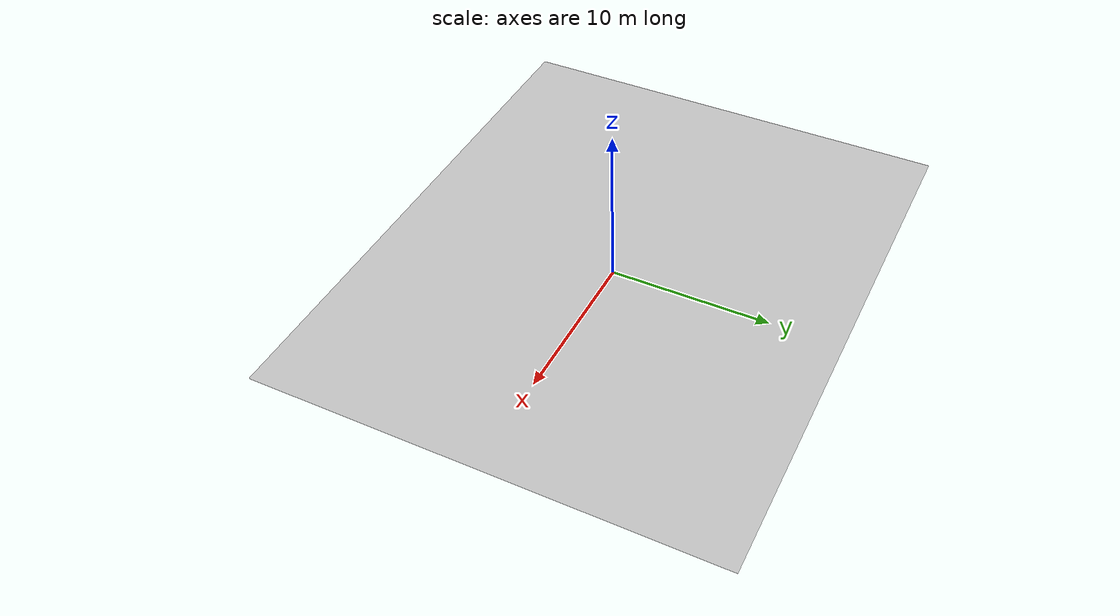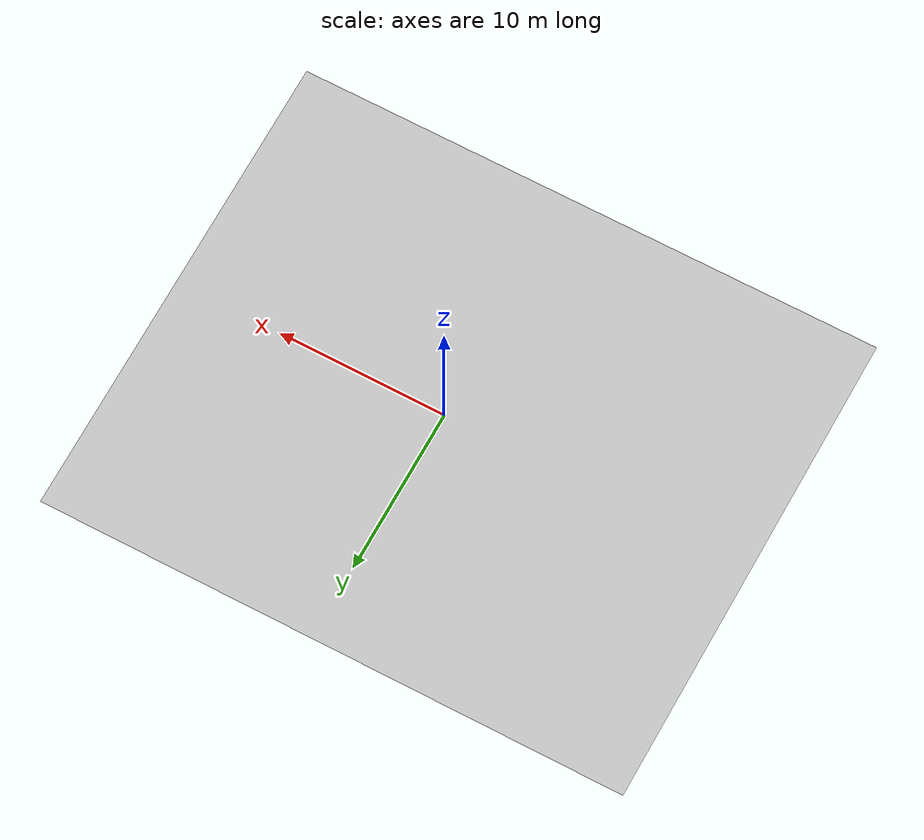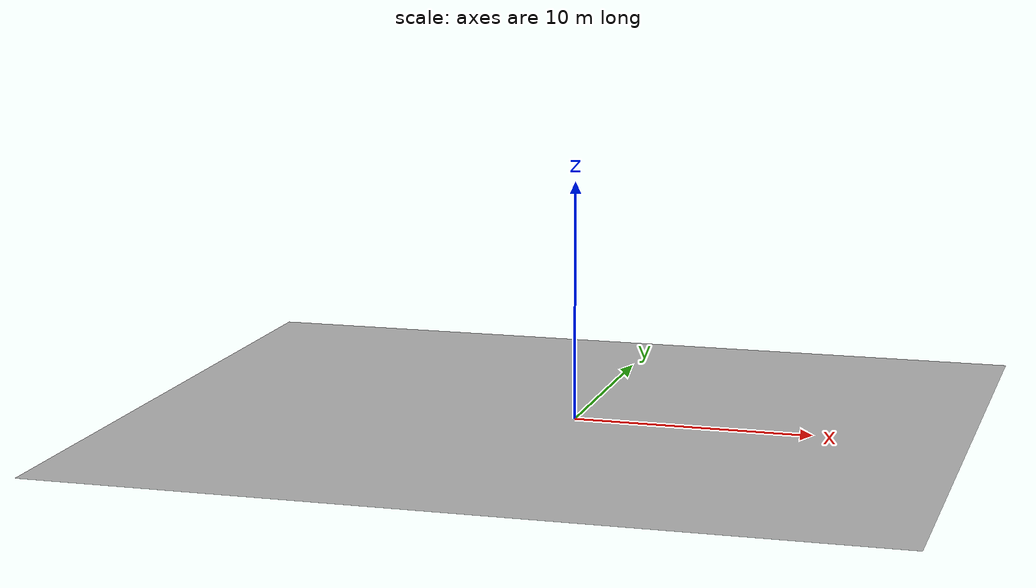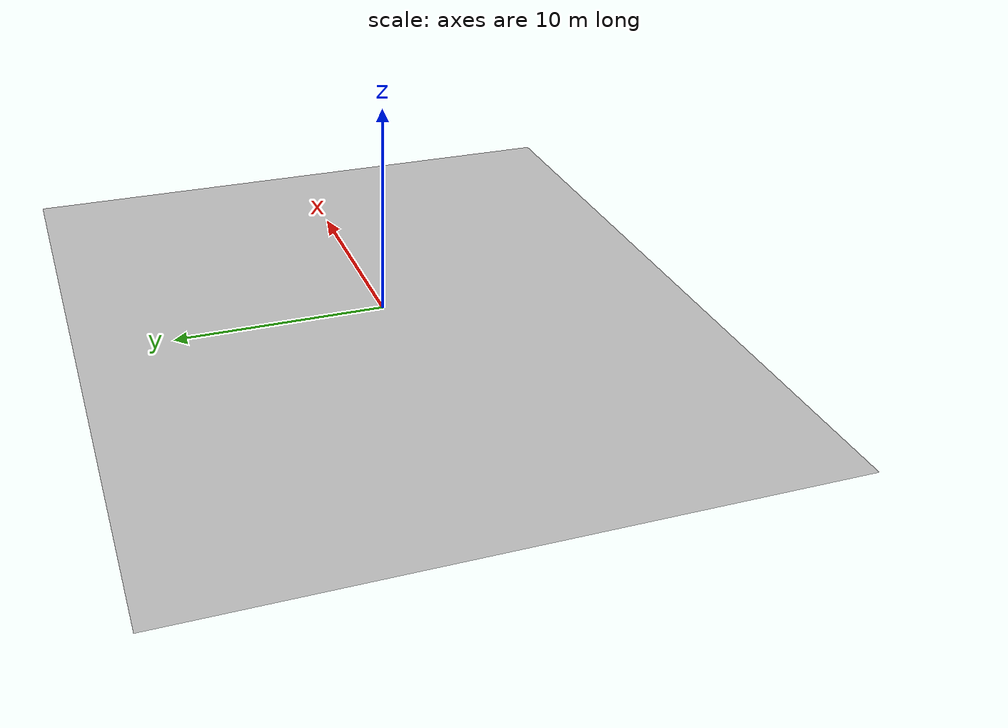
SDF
<?xml version="1.0" ?>
<sdf version="1.7">
  <world name="racing_track">
    <physics name="1ms" type="ignored">
      <max_step_size>0.001</max_step_size>
      <real_time_factor>1.0</real_time_factor>
    </physics>

    <light type="directional" name="sun">
        <cast_shadows>true</cast_shadows>
        <pose>0 0 10 0 0 0</pose>
        <diffuse>0.8 0.8 0.8 1</diffuse>
        <specular>0.2 0.2 0.2 1</specular>
        <attenuation>
            <range>1000</range>
            <constant>0.9</constant>
            <linear>0.01</linear>
            <quadratic>0.001</quadratic>
        </attenuation>
        <direction>-0.5 0.1 -0.9</direction>
    </light>

    <model name="grass_track">
      <pose>0 0 0.001 0 0 0</pose>
      <static>true</static>
      <link name="link">
        <visual name="visual">
          <geometry>
            <mesh>
              <uri>meshes/grass_track.obj</uri>
            </mesh>
          </geometry>
        </visual>

        <collision name="collision">
          <geometry>
            <mesh>
              <uri>meshes/grass_track.obj</uri>
              <scale>1 1 1</scale>
            </mesh>
          </geometry>
        </collision>
      </link>
    </model>
  </world>
</sdf>
